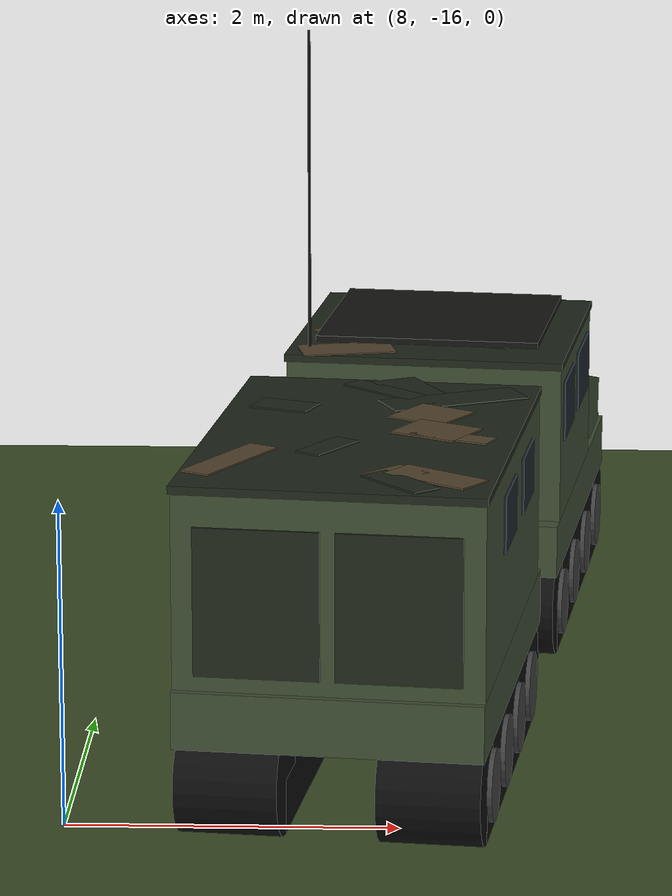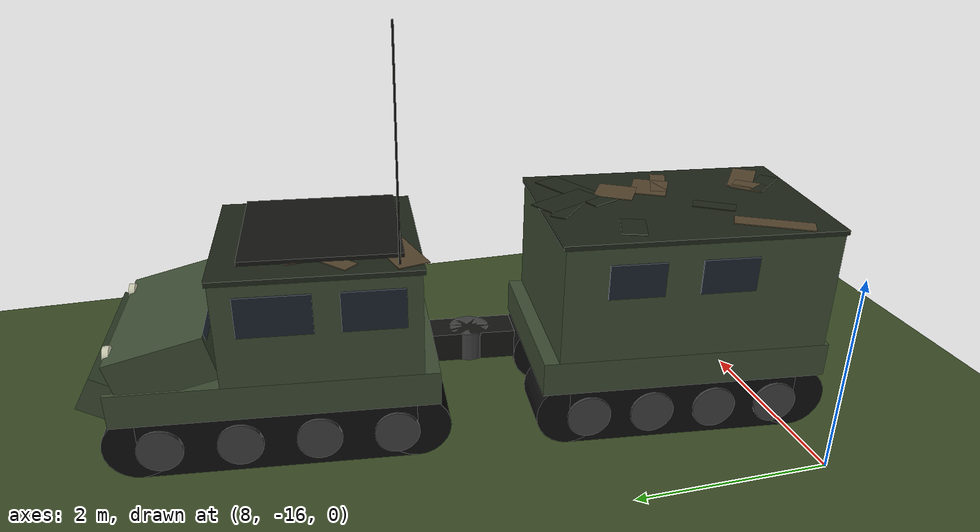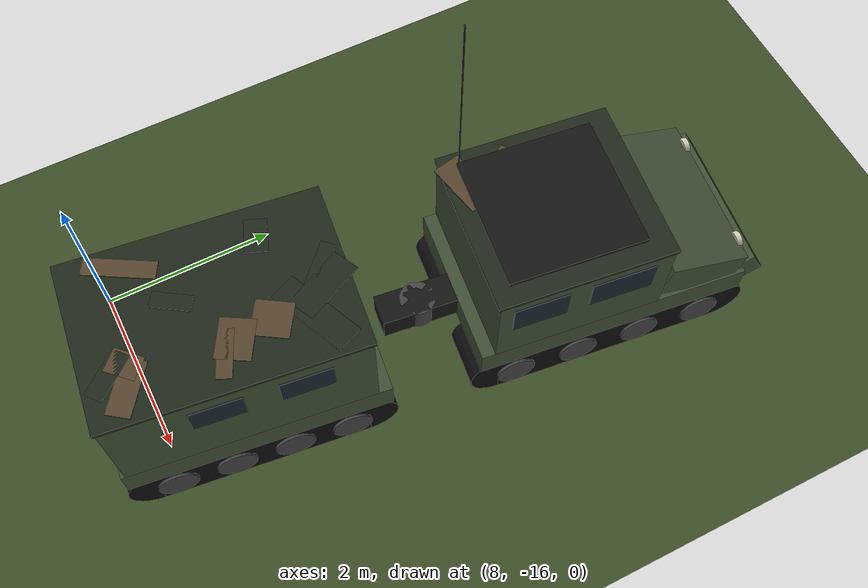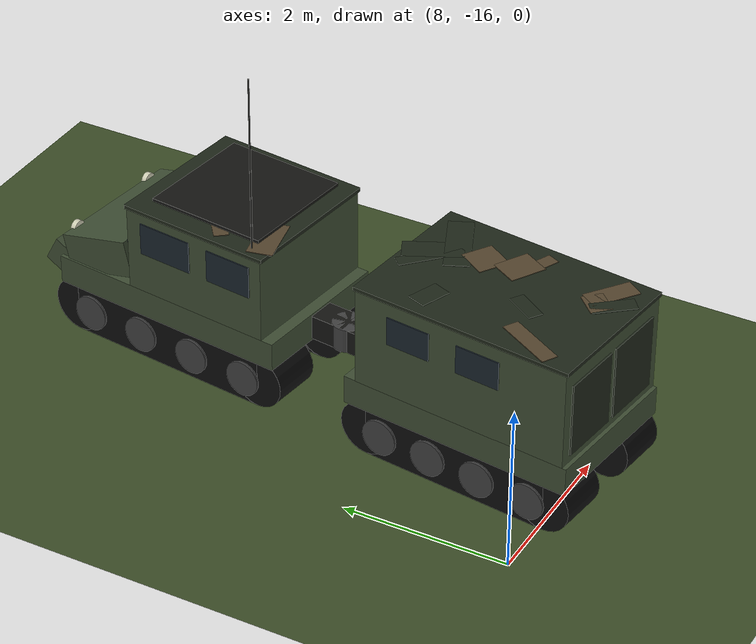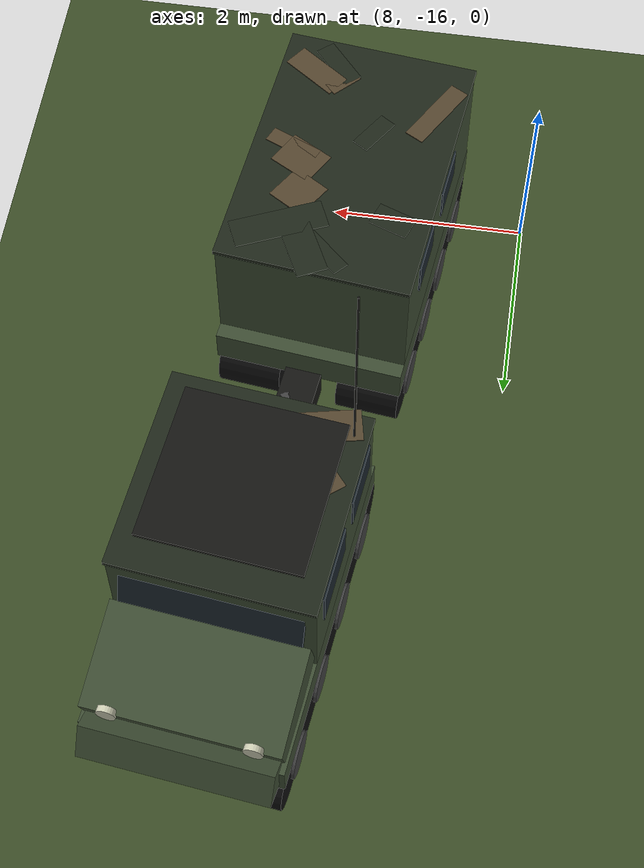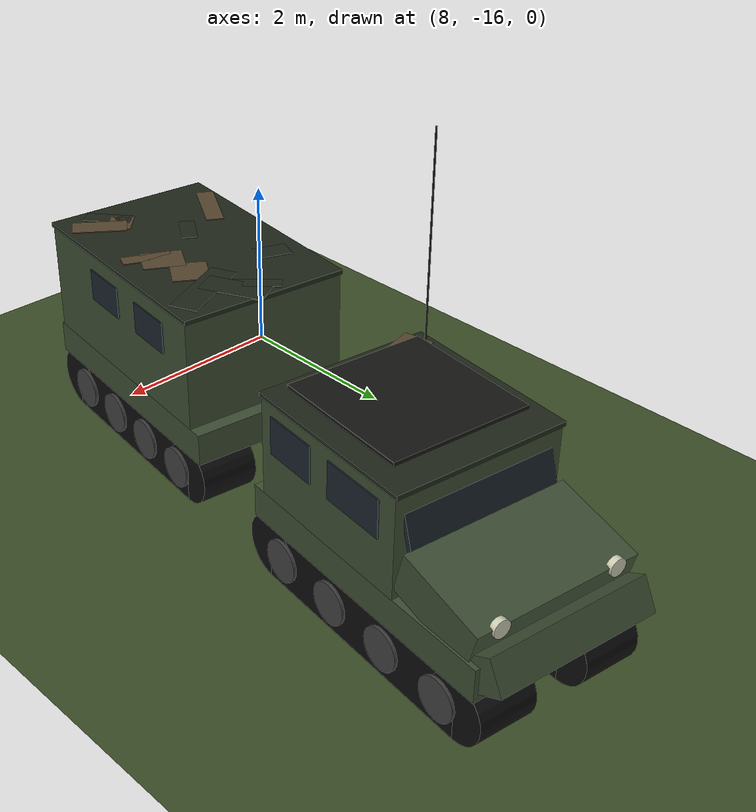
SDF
<sdf version="1.11">
 <world name="hive_base">
  <model name="ground_plane">
   <static>true</static>
   <link name="link">
    <collision name="collision">
     <geometry><plane><normal>0 0 1</normal><size>1000 1000</size></plane></geometry>
     <surface><friction><ode><mu>1.0</mu><mu2>1.0</mu2></ode></friction></surface>
    </collision>
    <visual name="visual">
     <geometry><plane><normal>0 0 1</normal><size>1000 1000</size></plane></geometry>
     <material>
      <ambient>0.23 0.3 0.15 1</ambient>
      <diffuse>0.23 0.3 0.15 1</diffuse>
      <specular>0.05 0.05 0.05 1</specular>
     </material>
    </visual>
   </link>
  </model>
  <model name="bv206_1">
   <static>true</static>
   <pose>10 -13 0 0 0 1.45</pose>
   <link name="link">
    <visual name="v1">
     <pose>2 -0.6 0.33 0 0 0</pose>
     <geometry><box><size>2.64 0.62 0.66</size></box></geometry>
     <material>
      <ambient>0.05 0.05 0.05 1</ambient>
      <diffuse>0.05 0.05 0.05 1</diffuse>
      <specular>0.05 0.05 0.05 1</specular>
     </material>
    </visual>
    <collision name="c1">
     <pose>2 -0.6 0.33 0 0 0</pose>
     <geometry><box><size>2.64 0.62 0.66</size></box></geometry>
    </collision>
    <visual name="v2">
     <pose>0.68 -0.6 0.33 1.571 0 0</pose>
     <geometry><cylinder><radius>0.33</radius><length>0.62</length></cylinder></geometry>
     <material>
      <ambient>0.05 0.05 0.05 1</ambient>
      <diffuse>0.05 0.05 0.05 1</diffuse>
      <specular>0.05 0.05 0.05 1</specular>
     </material>
    </visual>
    <collision name="c2">
     <pose>0.68 -0.6 0.33 1.571 0 0</pose>
     <geometry><cylinder><radius>0.33</radius><length>0.62</length></cylinder></geometry>
    </collision>
    <visual name="v3">
     <pose>3.32 -0.6 0.33 1.571 0 0</pose>
     <geometry><cylinder><radius>0.33</radius><length>0.62</length></cylinder></geometry>
     <material>
      <ambient>0.05 0.05 0.05 1</ambient>
      <diffuse>0.05 0.05 0.05 1</diffuse>
      <specular>0.05 0.05 0.05 1</specular>
     </material>
    </visual>
    <collision name="c3">
     <pose>3.32 -0.6 0.33 1.571 0 0</pose>
     <geometry><cylinder><radius>0.33</radius><length>0.62</length></cylinder></geometry>
    </collision>
    <visual name="v4">
     <pose>0.88 -0.92 0.3 1.571 0 0</pose>
     <geometry><cylinder><radius>0.22</radius><length>0.04</length></cylinder></geometry>
     <material>
      <ambient>0.25 0.25 0.25 1</ambient>
      <diffuse>0.25 0.25 0.25 1</diffuse>
      <specular>0.05 0.05 0.05 1</specular>
     </material>
    </visual>
    <visual name="v5">
     <pose>1.627 -0.92 0.3 1.571 0 0</pose>
     <geometry><cylinder><radius>0.22</radius><length>0.04</length></cylinder></geometry>
     <material>
      <ambient>0.25 0.25 0.25 1</ambient>
      <diffuse>0.25 0.25 0.25 1</diffuse>
      <specular>0.05 0.05 0.05 1</specular>
     </material>
    </visual>
    <visual name="v6">
     <pose>2.373 -0.92 0.3 1.571 0 0</pose>
     <geometry><cylinder><radius>0.22</radius><length>0.04</length></cylinder></geometry>
     <material>
      <ambient>0.25 0.25 0.25 1</ambient>
      <diffuse>0.25 0.25 0.25 1</diffuse>
      <specular>0.05 0.05 0.05 1</specular>
     </material>
    </visual>
    <visual name="v7">
     <pose>3.12 -0.92 0.3 1.571 0 0</pose>
     <geometry><cylinder><radius>0.22</radius><length>0.04</length></cylinder></geometry>
     <material>
      <ambient>0.25 0.25 0.25 1</ambient>
      <diffuse>0.25 0.25 0.25 1</diffuse>
      <specular>0.05 0.05 0.05 1</specular>
     </material>
    </visual>
    <visual name="v8">
     <pose>0.68 -0.6 0.665 0 0 0</pose>
     <geometry><box><size>0.06 0.64 0.02</size></box></geometry>
     <material>
      <ambient>0.25 0.25 0.25 1</ambient>
      <diffuse>0.25 0.25 0.25 1</diffuse>
      <specular>0.05 0.05 0.05 1</specular>
     </material>
     <cast_shadows>false</cast_shadows>
    </visual>
    <visual name="v9">
     <pose>0.973 -0.6 0.665 0 0 0</pose>
     <geometry><box><size>0.06 0.64 0.02</size></box></geometry>
     <material>
      <ambient>0.25 0.25 0.25 1</ambient>
      <diffuse>0.25 0.25 0.25 1</diffuse>
      <specular>0.05 0.05 0.05 1</specular>
     </material>
     <cast_shadows>false</cast_shadows>
    </visual>
    <visual name="v10">
     <pose>1.267 -0.6 0.665 0 0 0</pose>
     <geometry><box><size>0.06 0.64 0.02</size></box></geometry>
     <material>
      <ambient>0.25 0.25 0.25 1</ambient>
      <diffuse>0.25 0.25 0.25 1</diffuse>
      <specular>0.05 0.05 0.05 1</specular>
     </material>
     <cast_shadows>false</cast_shadows>
    </visual>
    <visual name="v11">
     <pose>1.56 -0.6 0.665 0 0 0</pose>
     <geometry><box><size>0.06 0.64 0.02</size></box></geometry>
     <material>
      <ambient>0.25 0.25 0.25 1</ambient>
      <diffuse>0.25 0.25 0.25 1</diffuse>
      <specular>0.05 0.05 0.05 1</specular>
     </material>
     <cast_shadows>false</cast_shadows>
    </visual>
    <visual name="v12">
     <pose>1.853 -0.6 0.665 0 0 0</pose>
     <geometry><box><size>0.06 0.64 0.02</size></box></geometry>
     <material>
      <ambient>0.25 0.25 0.25 1</ambient>
      <diffuse>0.25 0.25 0.25 1</diffuse>
      <specular>0.05 0.05 0.05 1</specular>
     </material>
     <cast_shadows>false</cast_shadows>
    </visual>
    <visual name="v13">
     <pose>2.147 -0.6 0.665 0 0 0</pose>
     <geometry><box><size>0.06 0.64 0.02</size></box></geometry>
     <material>
      <ambient>0.25 0.25 0.25 1</ambient>
      <diffuse>0.25 0.25 0.25 1</diffuse>
      <specular>0.05 0.05 0.05 1</specular>
     </material>
     <cast_shadows>false</cast_shadows>
    </visual>
    <visual name="v14">
     <pose>2.44 -0.6 0.665 0 0 0</pose>
     <geometry><box><size>0.06 0.64 0.02</size></box></geometry>
     <material>
      <ambient>0.25 0.25 0.25 1</ambient>
      <diffuse>0.25 0.25 0.25 1</diffuse>
      <specular>0.05 0.05 0.05 1</specular>
     </material>
     <cast_shadows>false</cast_shadows>
    </visual>
    <visual name="v15">
     <pose>2.733 -0.6 0.665 0 0 0</pose>
     <geometry><box><size>0.06 0.64 0.02</size></box></geometry>
     <material>
      <ambient>0.25 0.25 0.25 1</ambient>
      <diffuse>0.25 0.25 0.25 1</diffuse>
      <specular>0.05 0.05 0.05 1</specular>
     </material>
     <cast_shadows>false</cast_shadows>
    </visual>
    <visual name="v16">
     <pose>3.027 -0.6 0.665 0 0 0</pose>
     <geometry><box><size>0.06 0.64 0.02</size></box></geometry>
     <material>
      <ambient>0.25 0.25 0.25 1</ambient>
      <diffuse>0.25 0.25 0.25 1</diffuse>
      <specular>0.05 0.05 0.05 1</specular>
     </material>
     <cast_shadows>false</cast_shadows>
    </visual>
    <visual name="v17">
     <pose>3.32 -0.6 0.665 0 0 0</pose>
     <geometry><box><size>0.06 0.64 0.02</size></box></geometry>
     <material>
      <ambient>0.25 0.25 0.25 1</ambient>
      <diffuse>0.25 0.25 0.25 1</diffuse>
      <specular>0.05 0.05 0.05 1</specular>
     </material>
     <cast_shadows>false</cast_shadows>
    </visual>
    <visual name="v18">
     <pose>2 0.6 0.33 0 0 0</pose>
     <geometry><box><size>2.64 0.62 0.66</size></box></geometry>
     <material>
      <ambient>0.05 0.05 0.05 1</ambient>
      <diffuse>0.05 0.05 0.05 1</diffuse>
      <specular>0.05 0.05 0.05 1</specular>
     </material>
    </visual>
    <collision name="c18">
     <pose>2 0.6 0.33 0 0 0</pose>
     <geometry><box><size>2.64 0.62 0.66</size></box></geometry>
    </collision>
    <visual name="v19">
     <pose>0.68 0.6 0.33 1.571 0 0</pose>
     <geometry><cylinder><radius>0.33</radius><length>0.62</length></cylinder></geometry>
     <material>
      <ambient>0.05 0.05 0.05 1</ambient>
      <diffuse>0.05 0.05 0.05 1</diffuse>
      <specular>0.05 0.05 0.05 1</specular>
     </material>
    </visual>
    <collision name="c19">
     <pose>0.68 0.6 0.33 1.571 0 0</pose>
     <geometry><cylinder><radius>0.33</radius><length>0.62</length></cylinder></geometry>
    </collision>
    <visual name="v20">
     <pose>3.32 0.6 0.33 1.571 0 0</pose>
     <geometry><cylinder><radius>0.33</radius><length>0.62</length></cylinder></geometry>
     <material>
      <ambient>0.05 0.05 0.05 1</ambient>
      <diffuse>0.05 0.05 0.05 1</diffuse>
      <specular>0.05 0.05 0.05 1</specular>
     </material>
    </visual>
    <collision name="c20">
     <pose>3.32 0.6 0.33 1.571 0 0</pose>
     <geometry><cylinder><radius>0.33</radius><length>0.62</length></cylinder></geometry>
    </collision>
    <visual name="v21">
     <pose>0.88 0.92 0.3 1.571 0 0</pose>
     <geometry><cylinder><radius>0.22</radius><length>0.04</length></cylinder></geometry>
     <material>
      <ambient>0.25 0.25 0.25 1</ambient>
      <diffuse>0.25 0.25 0.25 1</diffuse>
      <specular>0.05 0.05 0.05 1</specular>
     </material>
    </visual>
    <visual name="v22">
     <pose>1.627 0.92 0.3 1.571 0 0</pose>
     <geometry><cylinder><radius>0.22</radius><length>0.04</length></cylinder></geometry>
     <material>
      <ambient>0.25 0.25 0.25 1</ambient>
      <diffuse>0.25 0.25 0.25 1</diffuse>
      <specular>0.05 0.05 0.05 1</specular>
     </material>
    </visual>
    <visual name="v23">
     <pose>2.373 0.92 0.3 1.571 0 0</pose>
     <geometry><cylinder><radius>0.22</radius><length>0.04</length></cylinder></geometry>
     <material>
      <ambient>0.25 0.25 0.25 1</ambient>
      <diffuse>0.25 0.25 0.25 1</diffuse>
      <specular>0.05 0.05 0.05 1</specular>
     </material>
    </visual>
    <visual name="v24">
     <pose>3.12 0.92 0.3 1.571 0 0</pose>
     <geometry><cylinder><radius>0.22</radius><length>0.04</length></cylinder></geometry>
     <material>
      <ambient>0.25 0.25 0.25 1</ambient>
      <diffuse>0.25 0.25 0.25 1</diffuse>
      <specular>0.05 0.05 0.05 1</specular>
     </material>
    </visual>
    <visual name="v25">
     <pose>0.68 0.6 0.665 0 0 0</pose>
     <geometry><box><size>0.06 0.64 0.02</size></box></geometry>
     <material>
      <ambient>0.25 0.25 0.25 1</ambient>
      <diffuse>0.25 0.25 0.25 1</diffuse>
      <specular>0.05 0.05 0.05 1</specular>
     </material>
     <cast_shadows>false</cast_shadows>
    </visual>
    <visual name="v26">
     <pose>0.973 0.6 0.665 0 0 0</pose>
     <geometry><box><size>0.06 0.64 0.02</size></box></geometry>
     <material>
      <ambient>0.25 0.25 0.25 1</ambient>
      <diffuse>0.25 0.25 0.25 1</diffuse>
      <specular>0.05 0.05 0.05 1</specular>
     </material>
     <cast_shadows>false</cast_shadows>
    </visual>
    <visual name="v27">
     <pose>1.267 0.6 0.665 0 0 0</pose>
     <geometry><box><size>0.06 0.64 0.02</size></box></geometry>
     <material>
      <ambient>0.25 0.25 0.25 1</ambient>
      <diffuse>0.25 0.25 0.25 1</diffuse>
      <specular>0.05 0.05 0.05 1</specular>
     </material>
     <cast_shadows>false</cast_shadows>
    </visual>
    <visual name="v28">
     <pose>1.56 0.6 0.665 0 0 0</pose>
     <geometry><box><size>0.06 0.64 0.02</size></box></geometry>
     <material>
      <ambient>0.25 0.25 0.25 1</ambient>
      <diffuse>0.25 0.25 0.25 1</diffuse>
      <specular>0.05 0.05 0.05 1</specular>
     </material>
     <cast_shadows>false</cast_shadows>
    </visual>
    <visual name="v29">
     <pose>1.853 0.6 0.665 0 0 0</pose>
     <geometry><box><size>0.06 0.64 0.02</size></box></geometry>
     <material>
      <ambient>0.25 0.25 0.25 1</ambient>
      <diffuse>0.25 0.25 0.25 1</diffuse>
      <specular>0.05 0.05 0.05 1</specular>
     </material>
     <cast_shadows>false</cast_shadows>
    </visual>
    <visual name="v30">
     <pose>2.147 0.6 0.665 0 0 0</pose>
     <geometry><box><size>0.06 0.64 0.02</size></box></geometry>
     <material>
      <ambient>0.25 0.25 0.25 1</ambient>
      <diffuse>0.25 0.25 0.25 1</diffuse>
      <specular>0.05 0.05 0.05 1</specular>
     </material>
     <cast_shadows>false</cast_shadows>
    </visual>
    <visual name="v31">
     <pose>2.44 0.6 0.665 0 0 0</pose>
     <geometry><box><size>0.06 0.64 0.02</size></box></geometry>
     <material>
      <ambient>0.25 0.25 0.25 1</ambient>
      <diffuse>0.25 0.25 0.25 1</diffuse>
      <specular>0.05 0.05 0.05 1</specular>
     </material>
     <cast_shadows>false</cast_shadows>
    </visual>
    <visual name="v32">
     <pose>2.733 0.6 0.665 0 0 0</pose>
     <geometry><box><size>0.06 0.64 0.02</size></box></geometry>
     <material>
      <ambient>0.25 0.25 0.25 1</ambient>
      <diffuse>0.25 0.25 0.25 1</diffuse>
      <specular>0.05 0.05 0.05 1</specular>
     </material>
     <cast_shadows>false</cast_shadows>
    </visual>
    <visual name="v33">
     <pose>3.027 0.6 0.665 0 0 0</pose>
     <geometry><box><size>0.06 0.64 0.02</size></box></geometry>
     <material>
      <ambient>0.25 0.25 0.25 1</ambient>
      <diffuse>0.25 0.25 0.25 1</diffuse>
      <specular>0.05 0.05 0.05 1</specular>
     </material>
     <cast_shadows>false</cast_shadows>
    </visual>
    <visual name="v34">
     <pose>3.32 0.6 0.665 0 0 0</pose>
     <geometry><box><size>0.06 0.64 0.02</size></box></geometry>
     <material>
      <ambient>0.25 0.25 0.25 1</ambient>
      <diffuse>0.25 0.25 0.25 1</diffuse>
      <specular>0.05 0.05 0.05 1</specular>
     </material>
     <cast_shadows>false</cast_shadows>
    </visual>
    <visual name="v35">
     <pose>2 0 0.76 0 0 0</pose>
     <geometry><box><size>3.1 1.85 0.35</size></box></geometry>
     <material>
      <ambient>0.24 0.3 0.2 1</ambient>
      <diffuse>0.24 0.3 0.2 1</diffuse>
      <specular>0.05 0.05 0.05 1</specular>
     </material>
    </visual>
    <collision name="c35">
     <pose>2 0 0.76 0 0 0</pose>
     <geometry><box><size>3.1 1.85 0.35</size></box></geometry>
    </collision>
    <visual name="v36">
     <pose>3 0 1.13 0 0.25 0</pose>
     <geometry><box><size>0.95 1.8 0.45</size></box></geometry>
     <material>
      <ambient>0.24 0.3 0.2 1</ambient>
      <diffuse>0.24 0.3 0.2 1</diffuse>
      <specular>0.05 0.05 0.05 1</specular>
     </material>
    </visual>
    <collision name="c36">
     <pose>3 0 1.13 0 0.25 0</pose>
     <geometry><box><size>0.95 1.8 0.45</size></box></geometry>
    </collision>
    <visual name="v37">
     <pose>3.55 0 0.86 0 -0.5 0</pose>
     <geometry><box><size>0.4 1.75 0.35</size></box></geometry>
     <material>
      <ambient>0.24 0.3 0.2 1</ambient>
      <diffuse>0.24 0.3 0.2 1</diffuse>
      <specular>0.05 0.05 0.05 1</specular>
     </material>
    </visual>
    <visual name="v38">
     <pose>1.55 0 1.455 0 0 0</pose>
     <geometry><box><size>1.9 1.85 1.05</size></box></geometry>
     <material>
      <ambient>0.24 0.3 0.2 1</ambient>
      <diffuse>0.24 0.3 0.2 1</diffuse>
      <specular>0.05 0.05 0.05 1</specular>
     </material>
    </visual>
    <collision name="c38">
     <pose>1.55 0 1.455 0 0 0</pose>
     <geometry><box><size>1.9 1.85 1.05</size></box></geometry>
    </collision>
    <visual name="v39">
     <pose>1.55 0 2 0 0 0</pose>
     <geometry><box><size>1.95 1.87 0.05</size></box></geometry>
     <material>
      <ambient>0.12 0.15 0.1 1</ambient>
      <diffuse>0.12 0.15 0.1 1</diffuse>
      <specular>0.05 0.05 0.05 1</specular>
     </material>
    </visual>
    <visual name="v40">
     <pose>2.52 0 1.635 0 -0.3 0</pose>
     <geometry><box><size>0.05 1.65 0.5</size></box></geometry>
     <material>
      <ambient>0.1 0.14 0.17 1</ambient>
      <diffuse>0.1 0.14 0.17 1</diffuse>
      <specular>0.05 0.05 0.05 1</specular>
     </material>
    </visual>
    <visual name="v41">
     <pose>1.95 -0.93 1.655 0 0 0</pose>
     <geometry><box><size>0.7 0.02 0.4</size></box></geometry>
     <material>
      <ambient>0.1 0.14 0.17 1</ambient>
      <diffuse>0.1 0.14 0.17 1</diffuse>
      <specular>0.05 0.05 0.05 1</specular>
     </material>
    </visual>
    <visual name="v42">
     <pose>1.05 -0.93 1.655 0 0 0</pose>
     <geometry><box><size>0.6 0.02 0.4</size></box></geometry>
     <material>
      <ambient>0.1 0.14 0.17 1</ambient>
      <diffuse>0.1 0.14 0.17 1</diffuse>
      <specular>0.05 0.05 0.05 1</specular>
     </material>
    </visual>
    <visual name="v43">
     <pose>1.95 0.93 1.655 0 0 0</pose>
     <geometry><box><size>0.7 0.02 0.4</size></box></geometry>
     <material>
      <ambient>0.1 0.14 0.17 1</ambient>
      <diffuse>0.1 0.14 0.17 1</diffuse>
      <specular>0.05 0.05 0.05 1</specular>
     </material>
    </visual>
    <visual name="v44">
     <pose>1.05 0.93 1.655 0 0 0</pose>
     <geometry><box><size>0.6 0.02 0.4</size></box></geometry>
     <material>
      <ambient>0.1 0.14 0.17 1</ambient>
      <diffuse>0.1 0.14 0.17 1</diffuse>
      <specular>0.05 0.05 0.05 1</specular>
     </material>
    </visual>
    <visual name="v45">
     <pose>3.5 -0.65 1.21 0 1.571 0</pose>
     <geometry><cylinder><radius>0.09</radius><length>0.06</length></cylinder></geometry>
     <material>
      <ambient>0.8 0.8 0.7 1</ambient>
      <diffuse>0.8 0.8 0.7 1</diffuse>
      <specular>0.05 0.05 0.05 1</specular>
     </material>
    </visual>
    <visual name="v46">
     <pose>3.5 0.65 1.21 0 1.571 0</pose>
     <geometry><cylinder><radius>0.09</radius><length>0.06</length></cylinder></geometry>
     <material>
      <ambient>0.8 0.8 0.7 1</ambient>
      <diffuse>0.8 0.8 0.7 1</diffuse>
      <specular>0.05 0.05 0.05 1</specular>
     </material>
    </visual>
    <visual name="v47">
     <pose>1.5 0 2.1 0 0 0</pose>
     <geometry><box><size>1.5 1.5 0.04</size></box></geometry>
     <material>
      <ambient>0.08 0.08 0.07 1</ambient>
      <diffuse>0.08 0.08 0.07 1</diffuse>
      <specular>0.05 0.05 0.05 1</specular>
     </material>
    </visual>
    <visual name="v48">
     <pose>0.8 0.8 3.08 0 0 0</pose>
     <geometry><cylinder><radius>0.01</radius><length>2.2</length></cylinder></geometry>
     <material>
      <ambient>0.08 0.08 0.07 1</ambient>
      <diffuse>0.08 0.08 0.07 1</diffuse>
      <specular>0.05 0.05 0.05 1</specular>
     </material>
    </visual>
    <visual name="v49">
     <pose>1.531 0.502 2.03 0 0 2.367</pose>
     <geometry><box><size>0.838 0.174 0.01</size></box></geometry>
     <material>
      <ambient>0.33 0.27 0.18 1</ambient>
      <diffuse>0.33 0.27 0.18 1</diffuse>
      <specular>0.05 0.05 0.05 1</specular>
     </material>
     <cast_shadows>false</cast_shadows>
    </visual>
    <visual name="v50">
     <pose>1.717 0.497 2.03 0 0 0.228</pose>
     <geometry><box><size>0.305 0.293 0.01</size></box></geometry>
     <material>
      <ambient>0.33 0.27 0.18 1</ambient>
      <diffuse>0.33 0.27 0.18 1</diffuse>
      <specular>0.05 0.05 0.05 1</specular>
     </material>
     <cast_shadows>false</cast_shadows>
    </visual>
    <visual name="v51">
     <pose>1.344 -0.449 2.03 0 0 2.918</pose>
     <geometry><box><size>0.728 0.227 0.01</size></box></geometry>
     <material>
      <ambient>0.12 0.15 0.1 1</ambient>
      <diffuse>0.12 0.15 0.1 1</diffuse>
      <specular>0.05 0.05 0.05 1</specular>
     </material>
     <cast_shadows>false</cast_shadows>
    </visual>
    <visual name="v52">
     <pose>1.539 -0.278 2.03 0 0 0.844</pose>
     <geometry><box><size>0.505 0.156 0.01</size></box></geometry>
     <material>
      <ambient>0.33 0.27 0.18 1</ambient>
      <diffuse>0.33 0.27 0.18 1</diffuse>
      <specular>0.05 0.05 0.05 1</specular>
     </material>
     <cast_shadows>false</cast_shadows>
    </visual>
    <visual name="v53">
     <pose>1.497 -0.239 2.03 0 0 0.497</pose>
     <geometry><box><size>0.788 0.215 0.01</size></box></geometry>
     <material>
      <ambient>0.33 0.27 0.18 1</ambient>
      <diffuse>0.33 0.27 0.18 1</diffuse>
      <specular>0.05 0.05 0.05 1</specular>
     </material>
     <cast_shadows>false</cast_shadows>
    </visual>
    <visual name="v54">
     <pose>1.17 -0.304 2.03 0 0 1.311</pose>
     <geometry><box><size>0.541 0.336 0.01</size></box></geometry>
     <material>
      <ambient>0.12 0.15 0.1 1</ambient>
      <diffuse>0.12 0.15 0.1 1</diffuse>
      <specular>0.05 0.05 0.05 1</specular>
     </material>
     <cast_shadows>false</cast_shadows>
    </visual>
    <visual name="v55">
     <pose>1.464 -0.425 2.03 0 0 1.531</pose>
     <geometry><box><size>0.427 0.299 0.01</size></box></geometry>
     <material>
      <ambient>0.33 0.27 0.18 1</ambient>
      <diffuse>0.33 0.27 0.18 1</diffuse>
      <specular>0.05 0.05 0.05 1</specular>
     </material>
     <cast_shadows>false</cast_shadows>
    </visual>
    <visual name="v56">
     <pose>1.321 -0.368 2.03 0 0 1.389</pose>
     <geometry><box><size>0.397 0.336 0.01</size></box></geometry>
     <material>
      <ambient>0.12 0.15 0.1 1</ambient>
      <diffuse>0.12 0.15 0.1 1</diffuse>
      <specular>0.05 0.05 0.05 1</specular>
     </material>
     <cast_shadows>false</cast_shadows>
    </visual>
    <visual name="v57">
     <pose>1.675 -0.062 2.03 0 0 0.084</pose>
     <geometry><box><size>0.539 0.312 0.01</size></box></geometry>
     <material>
      <ambient>0.12 0.15 0.1 1</ambient>
      <diffuse>0.12 0.15 0.1 1</diffuse>
      <specular>0.05 0.05 0.05 1</specular>
     </material>
     <cast_shadows>false</cast_shadows>
    </visual>
    <visual name="v58">
     <pose>0.771 0.544 2.03 0 0 1.899</pose>
     <geometry><box><size>0.629 0.31 0.01</size></box></geometry>
     <material>
      <ambient>0.33 0.27 0.18 1</ambient>
      <diffuse>0.33 0.27 0.18 1</diffuse>
      <specular>0.05 0.05 0.05 1</specular>
     </material>
     <cast_shadows>false</cast_shadows>
    </visual>
    <visual name="v59">
     <pose>0.05 0 0.76 0 0 0</pose>
     <geometry><box><size>0.9 0.35 0.3</size></box></geometry>
     <material>
      <ambient>0.08 0.08 0.07 1</ambient>
      <diffuse>0.08 0.08 0.07 1</diffuse>
      <specular>0.05 0.05 0.05 1</specular>
     </material>
    </visual>
    <visual name="v60">
     <pose>0.05 0 0.76 0 0 0</pose>
     <geometry><cylinder><radius>0.2</radius><length>0.3</length></cylinder></geometry>
     <material>
      <ambient>0.25 0.25 0.25 1</ambient>
      <diffuse>0.25 0.25 0.25 1</diffuse>
      <specular>0.05 0.05 0.05 1</specular>
     </material>
    </visual>
    <visual name="v61">
     <pose>-2 -0.6 0.33 0 0 0</pose>
     <geometry><box><size>2.34 0.62 0.66</size></box></geometry>
     <material>
      <ambient>0.05 0.05 0.05 1</ambient>
      <diffuse>0.05 0.05 0.05 1</diffuse>
      <specular>0.05 0.05 0.05 1</specular>
     </material>
    </visual>
    <collision name="c61">
     <pose>-2 -0.6 0.33 0 0 0</pose>
     <geometry><box><size>2.34 0.62 0.66</size></box></geometry>
    </collision>
    <visual name="v62">
     <pose>-3.17 -0.6 0.33 1.571 0 0</pose>
     <geometry><cylinder><radius>0.33</radius><length>0.62</length></cylinder></geometry>
     <material>
      <ambient>0.05 0.05 0.05 1</ambient>
      <diffuse>0.05 0.05 0.05 1</diffuse>
      <specular>0.05 0.05 0.05 1</specular>
     </material>
    </visual>
    <collision name="c62">
     <pose>-3.17 -0.6 0.33 1.571 0 0</pose>
     <geometry><cylinder><radius>0.33</radius><length>0.62</length></cylinder></geometry>
    </collision>
    <visual name="v63">
     <pose>-0.83 -0.6 0.33 1.571 0 0</pose>
     <geometry><cylinder><radius>0.33</radius><length>0.62</length></cylinder></geometry>
     <material>
      <ambient>0.05 0.05 0.05 1</ambient>
      <diffuse>0.05 0.05 0.05 1</diffuse>
      <specular>0.05 0.05 0.05 1</specular>
     </material>
    </visual>
    <collision name="c63">
     <pose>-0.83 -0.6 0.33 1.571 0 0</pose>
     <geometry><cylinder><radius>0.33</radius><length>0.62</length></cylinder></geometry>
    </collision>
    <visual name="v64">
     <pose>-2.97 -0.92 0.3 1.571 0 0</pose>
     <geometry><cylinder><radius>0.22</radius><length>0.04</length></cylinder></geometry>
     <material>
      <ambient>0.25 0.25 0.25 1</ambient>
      <diffuse>0.25 0.25 0.25 1</diffuse>
      <specular>0.05 0.05 0.05 1</specular>
     </material>
    </visual>
    <visual name="v65">
     <pose>-2.323 -0.92 0.3 1.571 0 0</pose>
     <geometry><cylinder><radius>0.22</radius><length>0.04</length></cylinder></geometry>
     <material>
      <ambient>0.25 0.25 0.25 1</ambient>
      <diffuse>0.25 0.25 0.25 1</diffuse>
      <specular>0.05 0.05 0.05 1</specular>
     </material>
    </visual>
    <visual name="v66">
     <pose>-1.677 -0.92 0.3 1.571 0 0</pose>
     <geometry><cylinder><radius>0.22</radius><length>0.04</length></cylinder></geometry>
     <material>
      <ambient>0.25 0.25 0.25 1</ambient>
      <diffuse>0.25 0.25 0.25 1</diffuse>
      <specular>0.05 0.05 0.05 1</specular>
     </material>
    </visual>
    <visual name="v67">
     <pose>-1.03 -0.92 0.3 1.571 0 0</pose>
     <geometry><cylinder><radius>0.22</radius><length>0.04</length></cylinder></geometry>
     <material>
      <ambient>0.25 0.25 0.25 1</ambient>
      <diffuse>0.25 0.25 0.25 1</diffuse>
      <specular>0.05 0.05 0.05 1</specular>
     </material>
    </visual>
    <visual name="v68">
     <pose>-3.17 -0.6 0.665 0 0 0</pose>
     <geometry><box><size>0.06 0.64 0.02</size></box></geometry>
     <material>
      <ambient>0.25 0.25 0.25 1</ambient>
      <diffuse>0.25 0.25 0.25 1</diffuse>
      <specular>0.05 0.05 0.05 1</specular>
     </material>
     <cast_shadows>false</cast_shadows>
    </visual>
    <visual name="v69">
     <pose>-2.91 -0.6 0.665 0 0 0</pose>
     <geometry><box><size>0.06 0.64 0.02</size></box></geometry>
     <material>
      <ambient>0.25 0.25 0.25 1</ambient>
      <diffuse>0.25 0.25 0.25 1</diffuse>
      <specular>0.05 0.05 0.05 1</specular>
     </material>
     <cast_shadows>false</cast_shadows>
    </visual>
    <visual name="v70">
     <pose>-2.65 -0.6 0.665 0 0 0</pose>
     <geometry><box><size>0.06 0.64 0.02</size></box></geometry>
     <material>
      <ambient>0.25 0.25 0.25 1</ambient>
      <diffuse>0.25 0.25 0.25 1</diffuse>
      <specular>0.05 0.05 0.05 1</specular>
     </material>
     <cast_shadows>false</cast_shadows>
    </visual>
    <visual name="v71">
     <pose>-2.39 -0.6 0.665 0 0 0</pose>
     <geometry><box><size>0.06 0.64 0.02</size></box></geometry>
     <material>
      <ambient>0.25 0.25 0.25 1</ambient>
      <diffuse>0.25 0.25 0.25 1</diffuse>
      <specular>0.05 0.05 0.05 1</specular>
     </material>
     <cast_shadows>false</cast_shadows>
    </visual>
    <visual name="v72">
     <pose>-2.13 -0.6 0.665 0 0 0</pose>
     <geometry><box><size>0.06 0.64 0.02</size></box></geometry>
     <material>
      <ambient>0.25 0.25 0.25 1</ambient>
      <diffuse>0.25 0.25 0.25 1</diffuse>
      <specular>0.05 0.05 0.05 1</specular>
     </material>
     <cast_shadows>false</cast_shadows>
    </visual>
    <visual name="v73">
     <pose>-1.87 -0.6 0.665 0 0 0</pose>
     <geometry><box><size>0.06 0.64 0.02</size></box></geometry>
     <material>
      <ambient>0.25 0.25 0.25 1</ambient>
      <diffuse>0.25 0.25 0.25 1</diffuse>
      <specular>0.05 0.05 0.05 1</specular>
     </material>
     <cast_shadows>false</cast_shadows>
    </visual>
    <visual name="v74">
     <pose>-1.61 -0.6 0.665 0 0 0</pose>
     <geometry><box><size>0.06 0.64 0.02</size></box></geometry>
     <material>
      <ambient>0.25 0.25 0.25 1</ambient>
      <diffuse>0.25 0.25 0.25 1</diffuse>
      <specular>0.05 0.05 0.05 1</specular>
     </material>
     <cast_shadows>false</cast_shadows>
    </visual>
    <visual name="v75">
     <pose>-1.35 -0.6 0.665 0 0 0</pose>
     <geometry><box><size>0.06 0.64 0.02</size></box></geometry>
     <material>
      <ambient>0.25 0.25 0.25 1</ambient>
      <diffuse>0.25 0.25 0.25 1</diffuse>
      <specular>0.05 0.05 0.05 1</specular>
     </material>
     <cast_shadows>false</cast_shadows>
    </visual>
    <visual name="v76">
     <pose>-1.09 -0.6 0.665 0 0 0</pose>
     <geometry><box><size>0.06 0.64 0.02</size></box></geometry>
     <material>
      <ambient>0.25 0.25 0.25 1</ambient>
      <diffuse>0.25 0.25 0.25 1</diffuse>
      <specular>0.05 0.05 0.05 1</specular>
     </material>
     <cast_shadows>false</cast_shadows>
    </visual>
    <visual name="v77">
     <pose>-0.83 -0.6 0.665 0 0 0</pose>
     <geometry><box><size>0.06 0.64 0.02</size></box></geometry>
     <material>
      <ambient>0.25 0.25 0.25 1</ambient>
      <diffuse>0.25 0.25 0.25 1</diffuse>
      <specular>0.05 0.05 0.05 1</specular>
     </material>
     <cast_shadows>false</cast_shadows>
    </visual>
    <visual name="v78">
     <pose>-2 0.6 0.33 0 0 0</pose>
     <geometry><box><size>2.34 0.62 0.66</size></box></geometry>
     <material>
      <ambient>0.05 0.05 0.05 1</ambient>
      <diffuse>0.05 0.05 0.05 1</diffuse>
      <specular>0.05 0.05 0.05 1</specular>
     </material>
    </visual>
    <collision name="c78">
     <pose>-2 0.6 0.33 0 0 0</pose>
     <geometry><box><size>2.34 0.62 0.66</size></box></geometry>
    </collision>
    <visual name="v79">
     <pose>-3.17 0.6 0.33 1.571 0 0</pose>
     <geometry><cylinder><radius>0.33</radius><length>0.62</length></cylinder></geometry>
     <material>
      <ambient>0.05 0.05 0.05 1</ambient>
      <diffuse>0.05 0.05 0.05 1</diffuse>
      <specular>0.05 0.05 0.05 1</specular>
     </material>
    </visual>
    <collision name="c79">
     <pose>-3.17 0.6 0.33 1.571 0 0</pose>
     <geometry><cylinder><radius>0.33</radius><length>0.62</length></cylinder></geometry>
    </collision>
    <visual name="v80">
     <pose>-0.83 0.6 0.33 1.571 0 0</pose>
     <geometry><cylinder><radius>0.33</radius><length>0.62</length></cylinder></geometry>
     <material>
      <ambient>0.05 0.05 0.05 1</ambient>
      <diffuse>0.05 0.05 0.05 1</diffuse>
      <specular>0.05 0.05 0.05 1</specular>
     </material>
    </visual>
    <collision name="c80">
     <pose>-0.83 0.6 0.33 1.571 0 0</pose>
     <geometry><cylinder><radius>0.33</radius><length>0.62</length></cylinder></geometry>
    </collision>
    <visual name="v81">
     <pose>-2.97 0.92 0.3 1.571 0 0</pose>
     <geometry><cylinder><radius>0.22</radius><length>0.04</length></cylinder></geometry>
     <material>
      <ambient>0.25 0.25 0.25 1</ambient>
      <diffuse>0.25 0.25 0.25 1</diffuse>
      <specular>0.05 0.05 0.05 1</specular>
     </material>
    </visual>
    <visual name="v82">
     <pose>-2.323 0.92 0.3 1.571 0 0</pose>
     <geometry><cylinder><radius>0.22</radius><length>0.04</length></cylinder></geometry>
     <material>
      <ambient>0.25 0.25 0.25 1</ambient>
      <diffuse>0.25 0.25 0.25 1</diffuse>
      <specular>0.05 0.05 0.05 1</specular>
     </material>
    </visual>
    <visual name="v83">
     <pose>-1.677 0.92 0.3 1.571 0 0</pose>
     <geometry><cylinder><radius>0.22</radius><length>0.04</length></cylinder></geometry>
     <material>
      <ambient>0.25 0.25 0.25 1</ambient>
      <diffuse>0.25 0.25 0.25 1</diffuse>
      <specular>0.05 0.05 0.05 1</specular>
     </material>
    </visual>
    <visual name="v84">
     <pose>-1.03 0.92 0.3 1.571 0 0</pose>
     <geometry><cylinder><radius>0.22</radius><length>0.04</length></cylinder></geometry>
     <material>
      <ambient>0.25 0.25 0.25 1</ambient>
      <diffuse>0.25 0.25 0.25 1</diffuse>
      <specular>0.05 0.05 0.05 1</specular>
     </material>
    </visual>
    <visual name="v85">
     <pose>-3.17 0.6 0.665 0 0 0</pose>
     <geometry><box><size>0.06 0.64 0.02</size></box></geometry>
     <material>
      <ambient>0.25 0.25 0.25 1</ambient>
      <diffuse>0.25 0.25 0.25 1</diffuse>
      <specular>0.05 0.05 0.05 1</specular>
     </material>
     <cast_shadows>false</cast_shadows>
    </visual>
    <visual name="v86">
     <pose>-2.91 0.6 0.665 0 0 0</pose>
     <geometry><box><size>0.06 0.64 0.02</size></box></geometry>
     <material>
      <ambient>0.25 0.25 0.25 1</ambient>
      <diffuse>0.25 0.25 0.25 1</diffuse>
      <specular>0.05 0.05 0.05 1</specular>
     </material>
     <cast_shadows>false</cast_shadows>
    </visual>
    <visual name="v87">
     <pose>-2.65 0.6 0.665 0 0 0</pose>
     <geometry><box><size>0.06 0.64 0.02</size></box></geometry>
     <material>
      <ambient>0.25 0.25 0.25 1</ambient>
      <diffuse>0.25 0.25 0.25 1</diffuse>
      <specular>0.05 0.05 0.05 1</specular>
     </material>
     <cast_shadows>false</cast_shadows>
    </visual>
    <visual name="v88">
     <pose>-2.39 0.6 0.665 0 0 0</pose>
     <geometry><box><size>0.06 0.64 0.02</size></box></geometry>
     <material>
      <ambient>0.25 0.25 0.25 1</ambient>
      <diffuse>0.25 0.25 0.25 1</diffuse>
      <specular>0.05 0.05 0.05 1</specular>
     </material>
     <cast_shadows>false</cast_shadows>
    </visual>
    <visual name="v89">
     <pose>-2.13 0.6 0.665 0 0 0</pose>
     <geometry><box><size>0.06 0.64 0.02</size></box></geometry>
     <material>
      <ambient>0.25 0.25 0.25 1</ambient>
      <diffuse>0.25 0.25 0.25 1</diffuse>
      <specular>0.05 0.05 0.05 1</specular>
     </material>
     <cast_shadows>false</cast_shadows>
    </visual>
    <visual name="v90">
     <pose>-1.87 0.6 0.665 0 0 0</pose>
     <geometry><box><size>0.06 0.64 0.02</size></box></geometry>
     <material>
      <ambient>0.25 0.25 0.25 1</ambient>
      <diffuse>0.25 0.25 0.25 1</diffuse>
      <specular>0.05 0.05 0.05 1</specular>
     </material>
     <cast_shadows>false</cast_shadows>
    </visual>
    <visual name="v91">
     <pose>-1.61 0.6 0.665 0 0 0</pose>
     <geometry><box><size>0.06 0.64 0.02</size></box></geometry>
     <material>
      <ambient>0.25 0.25 0.25 1</ambient>
      <diffuse>0.25 0.25 0.25 1</diffuse>
      <specular>0.05 0.05 0.05 1</specular>
     </material>
     <cast_shadows>false</cast_shadows>
    </visual>
    <visual name="v92">
     <pose>-1.35 0.6 0.665 0 0 0</pose>
     <geometry><box><size>0.06 0.64 0.02</size></box></geometry>
     <material>
      <ambient>0.25 0.25 0.25 1</ambient>
      <diffuse>0.25 0.25 0.25 1</diffuse>
      <specular>0.05 0.05 0.05 1</specular>
     </material>
     <cast_shadows>false</cast_shadows>
    </visual>
    <visual name="v93">
     <pose>-1.09 0.6 0.665 0 0 0</pose>
     <geometry><box><size>0.06 0.64 0.02</size></box></geometry>
     <material>
      <ambient>0.25 0.25 0.25 1</ambient>
      <diffuse>0.25 0.25 0.25 1</diffuse>
      <specular>0.05 0.05 0.05 1</specular>
     </material>
     <cast_shadows>false</cast_shadows>
    </visual>
    <visual name="v94">
     <pose>-0.83 0.6 0.665 0 0 0</pose>
     <geometry><box><size>0.06 0.64 0.02</size></box></geometry>
     <material>
      <ambient>0.25 0.25 0.25 1</ambient>
      <diffuse>0.25 0.25 0.25 1</diffuse>
      <specular>0.05 0.05 0.05 1</specular>
     </material>
     <cast_shadows>false</cast_shadows>
    </visual>
    <visual name="v95">
     <pose>-2 0 0.76 0 0 0</pose>
     <geometry><box><size>2.9 1.85 0.35</size></box></geometry>
     <material>
      <ambient>0.24 0.3 0.2 1</ambient>
      <diffuse>0.24 0.3 0.2 1</diffuse>
      <specular>0.05 0.05 0.05 1</specular>
     </material>
    </visual>
    <collision name="c95">
     <pose>-2 0 0.76 0 0 0</pose>
     <geometry><box><size>2.9 1.85 0.35</size></box></geometry>
    </collision>
    <visual name="v96">
     <pose>-2.05 0 1.53 0 0 0</pose>
     <geometry><box><size>2.7 1.85 1.2</size></box></geometry>
     <material>
      <ambient>0.24 0.3 0.2 1</ambient>
      <diffuse>0.24 0.3 0.2 1</diffuse>
      <specular>0.05 0.05 0.05 1</specular>
     </material>
    </visual>
    <collision name="c96">
     <pose>-2.05 0 1.53 0 0 0</pose>
     <geometry><box><size>2.7 1.85 1.2</size></box></geometry>
    </collision>
    <visual name="v97">
     <pose>-2.05 0 2.15 0 0 0</pose>
     <geometry><box><size>2.75 1.87 0.05</size></box></geometry>
     <material>
      <ambient>0.12 0.15 0.1 1</ambient>
      <diffuse>0.12 0.15 0.1 1</diffuse>
      <specular>0.05 0.05 0.05 1</specular>
     </material>
    </visual>
    <visual name="v98">
     <pose>-1.4 -0.93 1.78 0 0 0</pose>
     <geometry><box><size>0.55 0.02 0.35</size></box></geometry>
     <material>
      <ambient>0.1 0.14 0.17 1</ambient>
      <diffuse>0.1 0.14 0.17 1</diffuse>
      <specular>0.05 0.05 0.05 1</specular>
     </material>
    </visual>
    <visual name="v99">
     <pose>-2.3 -0.93 1.78 0 0 0</pose>
     <geometry><box><size>0.55 0.02 0.35</size></box></geometry>
     <material>
      <ambient>0.1 0.14 0.17 1</ambient>
      <diffuse>0.1 0.14 0.17 1</diffuse>
      <specular>0.05 0.05 0.05 1</specular>
     </material>
    </visual>
    <visual name="v100">
     <pose>-1.4 0.93 1.78 0 0 0</pose>
     <geometry><box><size>0.55 0.02 0.35</size></box></geometry>
     <material>
      <ambient>0.1 0.14 0.17 1</ambient>
      <diffuse>0.1 0.14 0.17 1</diffuse>
      <specular>0.05 0.05 0.05 1</specular>
     </material>
    </visual>
    <visual name="v101">
     <pose>-2.3 0.93 1.78 0 0 0</pose>
     <geometry><box><size>0.55 0.02 0.35</size></box></geometry>
     <material>
      <ambient>0.1 0.14 0.17 1</ambient>
      <diffuse>0.1 0.14 0.17 1</diffuse>
      <specular>0.05 0.05 0.05 1</specular>
     </material>
    </visual>
    <visual name="v102">
     <pose>-3.41 -0.42 1.48 0 0 0</pose>
     <geometry><box><size>0.02 0.75 0.9</size></box></geometry>
     <material>
      <ambient>0.12 0.15 0.1 1</ambient>
      <diffuse>0.12 0.15 0.1 1</diffuse>
      <specular>0.05 0.05 0.05 1</specular>
     </material>
    </visual>
    <visual name="v103">
     <pose>-3.41 0.42 1.48 0 0 0</pose>
     <geometry><box><size>0.02 0.75 0.9</size></box></geometry>
     <material>
      <ambient>0.12 0.15 0.1 1</ambient>
      <diffuse>0.12 0.15 0.1 1</diffuse>
      <specular>0.05 0.05 0.05 1</specular>
     </material>
    </visual>
    <visual name="v104">
     <pose>-0.95 0.028 2.18 0 0 0.937</pose>
     <geometry><box><size>0.58 0.163 0.01</size></box></geometry>
     <material>
      <ambient>0.12 0.15 0.1 1</ambient>
      <diffuse>0.12 0.15 0.1 1</diffuse>
      <specular>0.05 0.05 0.05 1</specular>
     </material>
     <cast_shadows>false</cast_shadows>
    </visual>
    <visual name="v105">
     <pose>-2.79 0.685 2.18 0 0 2.738</pose>
     <geometry><box><size>0.747 0.194 0.01</size></box></geometry>
     <material>
      <ambient>0.33 0.27 0.18 1</ambient>
      <diffuse>0.33 0.27 0.18 1</diffuse>
      <specular>0.05 0.05 0.05 1</specular>
     </material>
     <cast_shadows>false</cast_shadows>
    </visual>
    <visual name="v106">
     <pose>-1.536 -0.35 2.18 0 0 1.123</pose>
     <geometry><box><size>0.384 0.393 0.01</size></box></geometry>
     <material>
      <ambient>0.33 0.27 0.18 1</ambient>
      <diffuse>0.33 0.27 0.18 1</diffuse>
      <specular>0.05 0.05 0.05 1</specular>
     </material>
     <cast_shadows>false</cast_shadows>
    </visual>
    <visual name="v107">
     <pose>-2.4 0.16 2.18 0 0 2.682</pose>
     <geometry><box><size>0.42 0.175 0.01</size></box></geometry>
     <material>
      <ambient>0.12 0.15 0.1 1</ambient>
      <diffuse>0.12 0.15 0.1 1</diffuse>
      <specular>0.05 0.05 0.05 1</specular>
     </material>
     <cast_shadows>false</cast_shadows>
    </visual>
    <visual name="v108">
     <pose>-3.01 -0.575 2.18 0 0 1.059</pose>
     <geometry><box><size>0.583 0.249 0.01</size></box></geometry>
     <material>
      <ambient>0.33 0.27 0.18 1</ambient>
      <diffuse>0.33 0.27 0.18 1</diffuse>
      <specular>0.05 0.05 0.05 1</specular>
     </material>
     <cast_shadows>false</cast_shadows>
    </visual>
    <visual name="v109">
     <pose>-1.925 -0.434 2.18 0 0 1.164</pose>
     <geometry><box><size>0.441 0.364 0.01</size></box></geometry>
     <material>
      <ambient>0.33 0.27 0.18 1</ambient>
      <diffuse>0.33 0.27 0.18 1</diffuse>
      <specular>0.05 0.05 0.05 1</specular>
     </material>
     <cast_shadows>false</cast_shadows>
    </visual>
    <visual name="v110">
     <pose>-0.964 -0.169 2.18 0 0 0.576</pose>
     <geometry><box><size>0.695 0.298 0.01</size></box></geometry>
     <material>
      <ambient>0.12 0.15 0.1 1</ambient>
      <diffuse>0.12 0.15 0.1 1</diffuse>
      <specular>0.05 0.05 0.05 1</specular>
     </material>
     <cast_shadows>false</cast_shadows>
    </visual>
    <visual name="v111">
     <pose>-1.127 -0.432 2.18 0 0 2.107</pose>
     <geometry><box><size>0.896 0.301 0.01</size></box></geometry>
     <material>
      <ambient>0.12 0.15 0.1 1</ambient>
      <diffuse>0.12 0.15 0.1 1</diffuse>
      <specular>0.05 0.05 0.05 1</specular>
     </material>
     <cast_shadows>false</cast_shadows>
    </visual>
    <visual name="v112">
     <pose>-2.058 -0.547 2.18 0 0 1.27</pose>
     <geometry><box><size>0.52 0.161 0.01</size></box></geometry>
     <material>
      <ambient>0.33 0.27 0.18 1</ambient>
      <diffuse>0.33 0.27 0.18 1</diffuse>
      <specular>0.05 0.05 0.05 1</specular>
     </material>
     <cast_shadows>false</cast_shadows>
    </visual>
    <visual name="v113">
     <pose>-2.975 -0.334 2.18 0 0 2.477</pose>
     <geometry><box><size>0.324 0.255 0.01</size></box></geometry>
     <material>
      <ambient>0.33 0.27 0.18 1</ambient>
      <diffuse>0.33 0.27 0.18 1</diffuse>
      <specular>0.05 0.05 0.05 1</specular>
     </material>
     <cast_shadows>false</cast_shadows>
    </visual>
    <visual name="v114">
     <pose>-3.149 -0.389 2.18 0 0 0.816</pose>
     <geometry><box><size>0.511 0.194 0.01</size></box></geometry>
     <material>
      <ambient>0.12 0.15 0.1 1</ambient>
      <diffuse>0.12 0.15 0.1 1</diffuse>
      <specular>0.05 0.05 0.05 1</specular>
     </material>
     <cast_shadows>false</cast_shadows>
    </visual>
    <visual name="v115">
     <pose>-1.435 0.584 2.18 0 0 1.327</pose>
     <geometry><box><size>0.383 0.24 0.01</size></box></geometry>
     <material>
      <ambient>0.12 0.15 0.1 1</ambient>
      <diffuse>0.12 0.15 0.1 1</diffuse>
      <specular>0.05 0.05 0.05 1</specular>
     </material>
     <cast_shadows>false</cast_shadows>
    </visual>
   </link>
  </model>
 </world>
</sdf>
